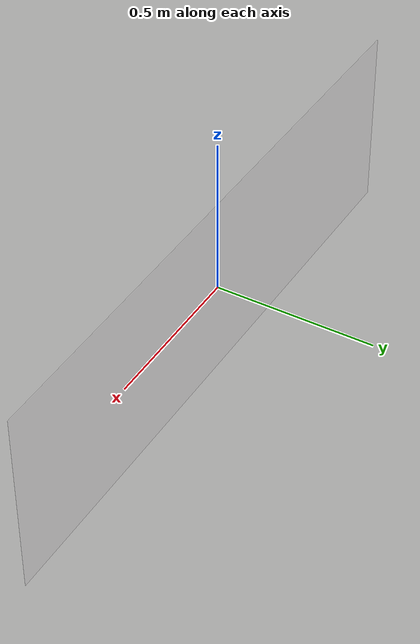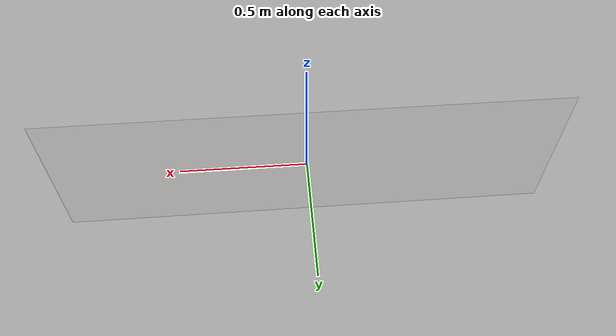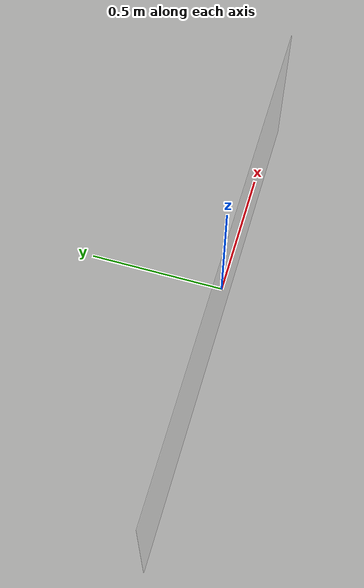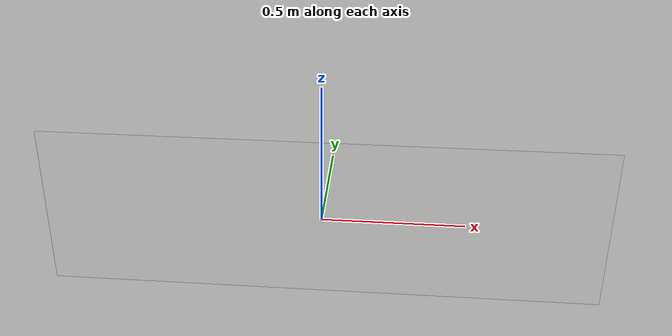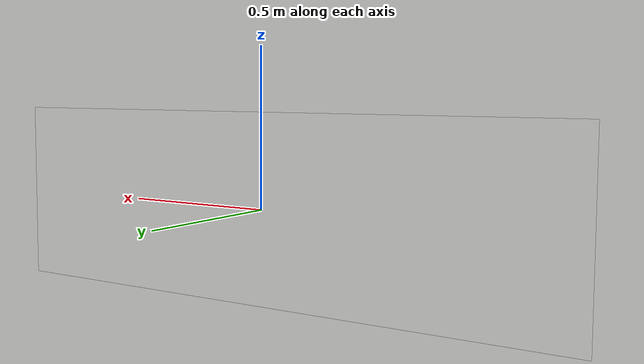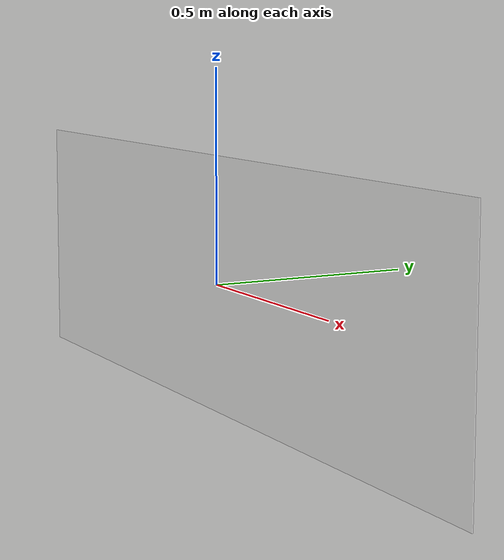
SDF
<?xml version="1.0" ?>

<sdf version="1.5">
  <model name="wrs_fcsc2020_wall_outside">
    <static>1</static>
    <link name="link">
      <visual name="visual">
        <geometry>
          <box>
            <size>2 0.002 0.6</size>
          </box>
        </geometry>
        <material>
          <script>
            <uri>file://media/materials/scripts/gazebo.material</uri>
            <name>Gazebo/White</name>
          </script>
        </material>
        <transparency>0.9</transparency>
      </visual>
      <collision name="collision">
        <geometry>
          <box>
            <size>2 0.002 0.6</size>
          </box>
        </geometry>
      </collision>
    </link>
  </model>
</sdf>
